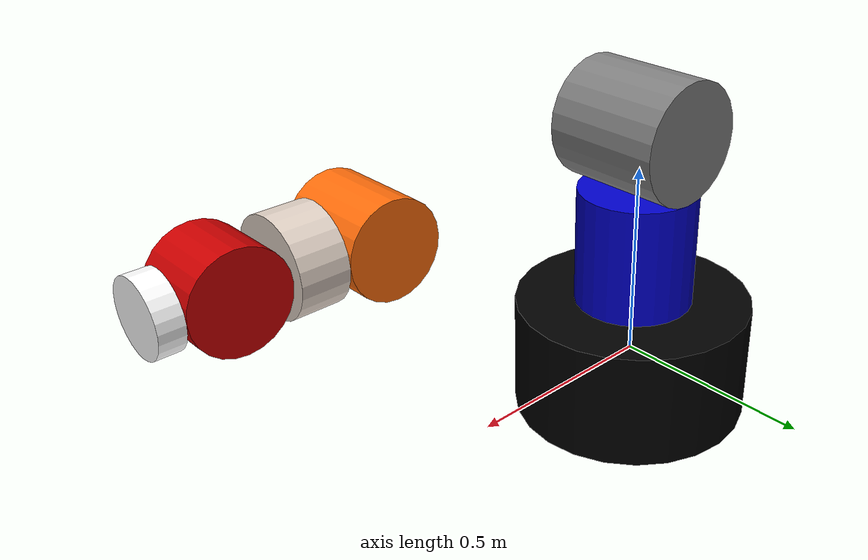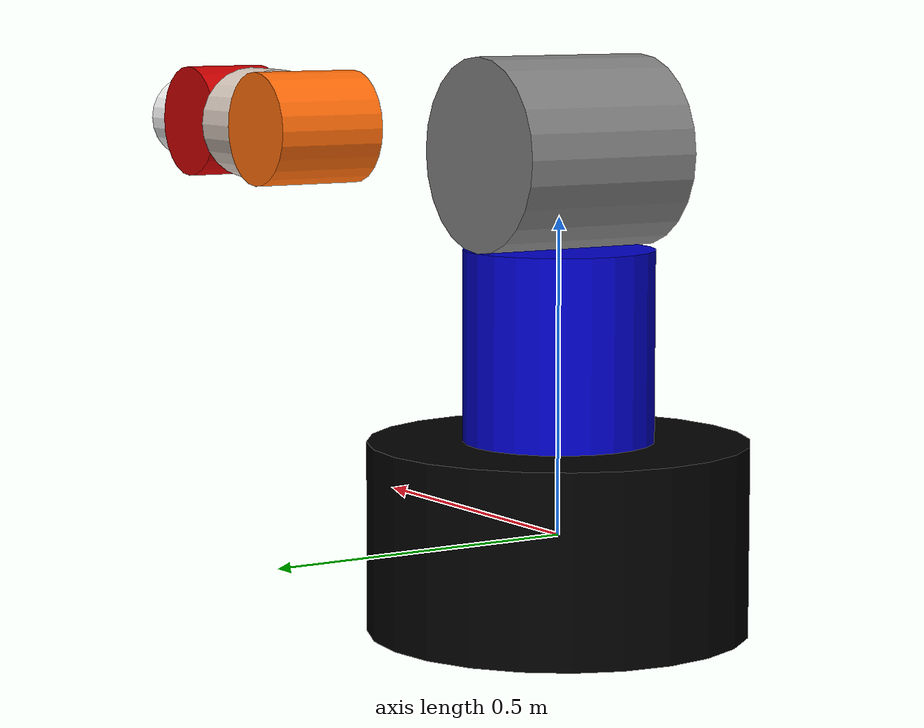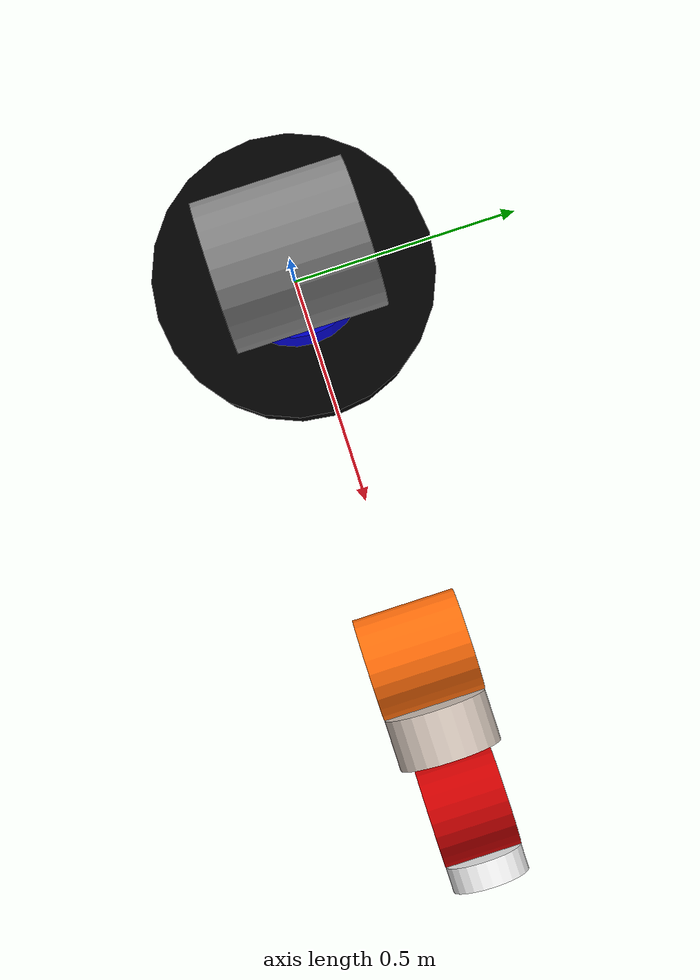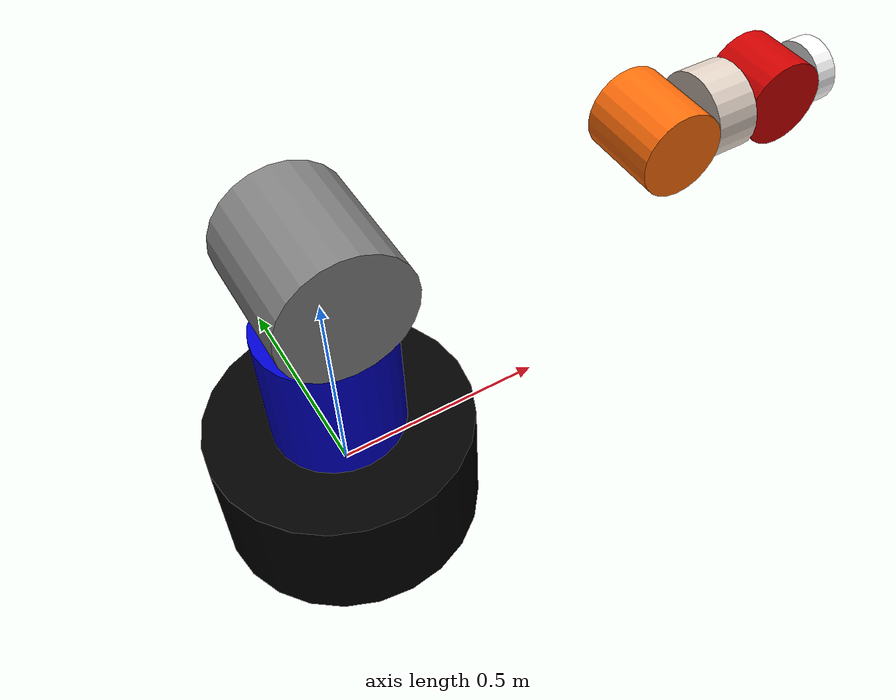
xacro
<?xml version="1.0" encoding="UTF-8"?>
<robot xmlns:xacro="http://wiki.ros.org/xacro" name="demo">

  <!-- Use this if parameters are set from the launch file, otherwise delete -->
  <xacro:arg name="prefix" default=""/>

  <xacro:arg name="use_mock_hardware" default="false"/>
  <xacro:arg name="mock_sensor_commands" default="false"/>
  <xacro:arg name="sim_gazebo_classic" default="false"/>
  <xacro:arg name="sim_gazebo" default="false"/>
  <xacro:arg name="simulation_controllers" default=""/>

  <xacro:include filename="$(find robotrainer3_description)/urdf/demo/demo_macro.xacro"/>
  <xacro:include filename="$(find robotrainer3_description)/urdf/demo/demo_macro.ros2_control.xacro"/>

  <!-- create link fixed to the "world" -->
  <link name="world"/>

  <!-- Load robot's macro with parameters -->
  <!-- set prefix if multiple robots are used -->
  <xacro:demo prefix="$(arg prefix)" parent="world">
    <origin xyz="0 0 0" rpy="0 0 0"/>          <!-- position robot in the world -->
  </xacro:demo>

  <xacro:demo_ros2_control
    name="demo"
    prefix="$(arg prefix)"
    use_mock_hardware="$(arg use_mock_hardware)"
    mock_sensor_commands="$(arg mock_sensor_commands)"
    sim_gazebo_classic="$(arg sim_gazebo_classic)"
    sim_gazebo="$(arg sim_gazebo)"
    simulation_controllers="$(arg simulation_controllers)"/>

  <!-- Import Gazebo definitions + plugin -->
  <xacro:include filename="$(find robotrainer3_description)/urdf/demo/demo_macro.gazebo.xacro"/>
  <xacro:demo_gazebo
    prefix="$(arg prefix)"
    simulation_controllers="$(arg simulation_controllers)"
    sim_gazebo_classic="$(arg sim_gazebo_classic)"
    sim_gazebo="$(arg sim_gazebo)"
  />

</robot>

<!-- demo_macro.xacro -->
<robot xmlns:xacro="http://wiki.ros.org/xacro">

  <xacro:include filename="$(find robotrainer3_description)/urdf/common/inertials.xacro"/>
  <xacro:include filename="$(find robotrainer3_description)/urdf/common/materials.xacro"/>

  <xacro:macro name="demo" params="prefix parent *origin">
    <!-- LINKS -->
    <!-- base link -->
    <link name="${prefix}base_link">
      <!-- Default inertial for Gazebo - copy and edit block from 'common.xacro'
           to get more realistic behavior -->
      <xacro:default_inertial/>
      <visual>
        <origin xyz="0 0 0" rpy="0 0 0"/>
        <geometry>
          <cylinder length="0.3" radius="0.3"/>
        </geometry>
        <material name="black"/>
      </visual>
      <collision>
        <origin xyz="0 0 0" rpy="0 0 0"/>
        <geometry>
          <cylinder length="0.3" radius="0.3"/>
        </geometry>
      </collision>
    </link>
    <!-- link 1 -->
    <link name="${prefix}link1">
      <!-- Default inertial for Gazebo - copy and edit block from 'common.xacro'
           to get more realistic behavior -->
      <xacro:default_inertial/>
      <visual>
        <origin xyz="0 0 0" rpy="0 0 0"/>
        <geometry>
          <cylinder length="0.3" radius="0.15"/>
        </geometry>
        <material name="blue"/>
      </visual>
      <collision>
        <origin xyz="0 0 0" rpy="0 0 0"/>
        <geometry>
          <cylinder length="0.3" radius="0.15"/>
        </geometry>
        <material name="green"/>
      </collision>
    </link>
    <!-- link 2 -->
    <link name="${prefix}link2">
      <!-- Default inertial for Gazebo - copy and edit block from 'common.xacro'
           to get more realistic behavior-->
      <xacro:default_inertial/>
      <visual>
        <origin xyz="0 0 0" rpy="0 0 0"/>
        <geometry>
          <cylinder length="0.3" radius="0.15"/>
        </geometry>
        <material name="grey"/>
      </visual>
      <collision>
        <origin xyz="0 0 0" rpy="0 0 0"/>
        <geometry>
          <cylinder length="0.3" radius="0.15"/>
        </geometry>
      </collision>
    </link>
    <!-- link 3 -->
    <link name="${prefix}link3">
      <!-- Default inertial for Gazebo - copy and edit block from 'common.xacro'
           to get more realistic behavior-->
      <xacro:default_inertial/>
      <visual>
        <origin xyz="0 0 0" rpy="0 0 0"/>
        <geometry>
          <cylinder length="0.2" radius="0.1"/>
        </geometry>
        <material name="orange"/>
      </visual>
      <collision>
        <origin xyz="0 0 0" rpy="0 0 0"/>
        <geometry>
          <cylinder length="0.2" radius="0.1"/>
        </geometry>
      </collision>
    </link>
    <!-- link 4 -->
    <link name="${prefix}link4">
      <!-- Default inertial for Gazebo - copy and edit block from 'common.xacro'
           to get more realistic behavior-->
      <xacro:default_inertial/>
      <visual>
        <origin xyz="0 0 0" rpy="0 0 0"/>
        <geometry>
          <cylinder length="0.1" radius="0.1"/>
        </geometry>
        <material name="brown"/>
      </visual>
      <collision>
        <origin xyz="0 0 0" rpy="0 0 0"/>
        <geometry>
          <cylinder length="0.1" radius="0.1"/>
        </geometry>
      </collision>
    </link>
    <!-- link 5 -->
    <link name="${prefix}link5">
      <!-- Default inertial for Gazebo - copy and edit block from 'common.xacro'
           to get more realistic behavior-->
      <xacro:default_inertial/>
      <visual>
        <origin xyz="0 0 0" rpy="0 0 0"/>
        <geometry>
          <cylinder length="0.15" radius="0.1"/>
        </geometry>
        <material name="red"/>
      </visual>
      <collision>
        <origin xyz="0 0 0" rpy="0 0 0"/>
        <geometry>
          <cylinder length="0.15" radius="0.1"/>
        </geometry>
      </collision>
    </link>
    <!-- link 6 -->
    <link name="${prefix}link6">
      <!-- Default inertial for Gazebo - copy and edit block from 'common.xacro'
           to get more realistic behavior-->
      <xacro:default_inertial/>
      <visual>
        <origin xyz="0 0 0" rpy="0 0 0"/>
        <geometry>
          <cylinder length="0.05" radius="0.075"/>
        </geometry>
        <material name="white"/>
      </visual>
      <collision>
        <origin xyz="0 0 0" rpy="0 0 0"/>
        <geometry>
          <cylinder length="0.05" radius="0.075"/>
        </geometry>
      </collision>
    </link>

    <!-- All-zero tool frame. This frame should correspond to the TOOL frame of the robot's controller.) -->
    <link name="${prefix}tool0"/>
    <!-- tool link -->

    <!-- START Delete if not needed -->
    <!-- This frame should correspond to the BASE coordinate system of robot's controller.) -->
    <link name="${prefix}base"/>
    <!-- Frame for mounting EEF models to a manipulator. x+ axis points forward (REP 103). -->
    <link name="${prefix}flange"/>
    <!-- END Delete if not needed  -->
    <!-- END LINKS -->

    <!-- JOINTS -->
    <!-- base_joint fixes base_link to the environment -->
    <joint name="${prefix}base_joint" type="fixed">
      <xacro:insert_block name="origin"/>
      <parent link="${parent}"/>
      <child link="${prefix}base_link"/>
    </joint>
    <!-- joint 1 -->
    <joint name="${prefix}joint1" type="revolute">
      <origin xyz="0 0 0.3" rpy="${pi} 0 0"/>
      <parent link="${prefix}base_link"/>
      <child link="${prefix}link1"/>
      <axis xyz="0 0 1"/>
      <limit effort="0" lower="${radians(-180)}" upper="${radians(180)}" velocity="${radians(180)}"/>
    </joint>
    <!-- joint 2 -->
    <joint name="${prefix}joint2" type="revolute">
      <origin xyz="0 0 -0.3" rpy="${pi/2} 0 0"/>
      <parent link="${prefix}link1"/>
      <child link="${prefix}link2"/>
      <axis xyz="0 0 1"/>
      <limit effort="0" lower="${radians(-180)}" upper="${radians(180)}" velocity="${radians(180)}"/>
    </joint>
    <!-- joint 3 -->
    <joint name="${prefix}joint3" type="revolute">
      <origin xyz="0.8 0 0" rpy="0 0 0"/>
      <parent link="${prefix}link2"/>
      <child link="${prefix}link3"/>
      <axis xyz="0 0 1"/>
      <limit effort="0" lower="${radians(-90)}" upper="${radians(180)}" velocity="${radians(270)}"/>
    </joint>
    <!-- joint 4 -->
    <joint name="${prefix}joint4" type="revolute">
      <origin xyz="0.15 0 0" rpy="0 ${-pi/2} 0"/>
      <parent link="${prefix}link3"/>
      <child link="${prefix}link4"/>
      <axis xyz="0 0 1"/>
      <limit effort="0" lower="${radians(-360)}" upper="${radians(360)}" velocity="${radians(360)}"/>
    </joint>
    <!-- joint 5 -->
    <joint name="${prefix}joint5" type="revolute">
      <origin xyz="0 0 -0.15" rpy="0 ${pi/2} 0"/>
      <parent link="${prefix}link4"/>
      <child link="${prefix}link5"/>
      <axis xyz="0 0 1"/>
      <limit effort="0" lower="${radians(-120)}" upper="${radians(120)}" velocity="${radians(540)}"/>
    </joint>
    <!-- joint 6 -->
    <joint name="${prefix}joint6" type="revolute">
      <origin xyz="0.125 0 0" rpy="0 ${-pi/2} 0"/>
      <parent link="${prefix}link5"/>
      <child link="${prefix}link6"/>
      <axis xyz="0 0 1"/>
      <limit effort="0" lower="${radians(-360)}" upper="${radians(360)}" velocity="${radians(720)}"/>
    </joint>

    <!-- tool frame - fixed frame -->
    <joint name="${prefix}joint6-tool0" type="fixed">
      <parent link="${prefix}link6"/>
      <child link="${prefix}tool0"/>
      <origin xyz="0 0 -0.115" rpy="0 ${-pi} ${-pi/2}"/>
    </joint>
    <!-- END JOINTS -->

    <!-- START Delete if not needed -->
    <joint name="${prefix}base_link-base_joint" type="fixed">
      <origin xyz="0 0 0" rpy="0 0 0"/>
      <parent link="${prefix}base_link"/>
      <child link="${prefix}base"/>
    </joint>

    <joint name="${prefix}tool0-flange_joint" type="fixed">
      <origin xyz="0 0 0" rpy="0 0 0"/>
      <parent link="${prefix}tool0"/>
      <child link="${prefix}flange"/>
    </joint>
    <!-- END Delete if not needed  -->

  </xacro:macro>
</robot>

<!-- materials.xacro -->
<robot>
  <material name="black">
    <color rgba="0.0 0.0 0.0 1.0"/>
  </material>

  <material name="blue">
    <color rgba="0.0 0.0 0.8 1.0"/>
  </material>

  <material name="green">
    <color rgba="0.0 1.0 0.0 1.0"/>
  </material>

  <material name="dark_grey">
    <color rgba="0.2 0.2 0.2 1.0"/>
  </material>

  <material name="grey">
    <color rgba="0.5 0.5 0.5 1.0"/>
  </material>

  <material name="light_grey">
    <color rgba="0.8 0.8 0.8 1.0"/>
  </material>

  <material name="orange">
    <color rgba="${255/255} ${108/255} ${10/255} 1.0"/>
  </material>

  <material name="brown">
    <color rgba="${222/255} ${207/255} ${195/255} 1.0"/>
  </material>

  <material name="red">
    <color rgba="0.8 0.0 0.0 1.0"/>
  </material>

  <material name="white">
    <color rgba="1.0 1.0 1.0 1.0"/>
  </material>

  <material name="invisible">
    <color rgba="0.0 0.0 0.0 0.0"/>
  </material>

</robot>
